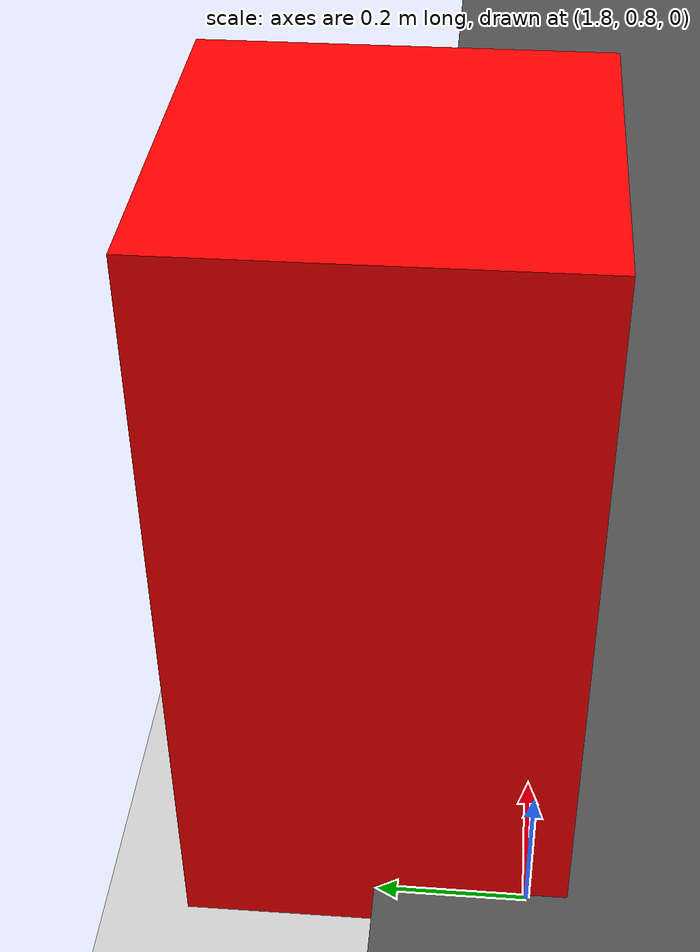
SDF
<?xml version="1.0" ?>
<sdf version="1.10">
  <world name="test_arena">
    <physics name="1ms" type="ignored">
      <max_step_size>0.001</max_step_size>
      <real_time_factor>1.0</real_time_factor>
    </physics>
    <plugin filename="gz-sim-physics-system" name="gz::sim::systems::Physics"></plugin>
    <plugin filename="gz-sim-sensors-system" name="gz::sim::systems::Sensors">
      <render_engine>ogre2</render_engine>
    </plugin>
    <plugin filename="gz-sim-user-commands-system" name="gz::sim::systems::UserCommands"></plugin>
    <plugin filename="gz-sim-scene-broadcaster-system" name="gz::sim::systems::SceneBroadcaster"></plugin>

    <light type="directional" name="sun">
      <cast_shadows>true</cast_shadows>
      <pose>0 0 10 0 0 0</pose>
      <diffuse>0.8 0.8 0.8 1</diffuse>
      <specular>0.2 0.2 0.2 1</specular>
      <attenuation>
        <range>1000</range>
        <constant>0.9</constant>
        <linear>0.01</linear>
        <quadratic>0.001</quadratic>
      </attenuation>
      <direction>-0.5 0.1 -0.9</direction>
    </light>

    <model name="ground_plane">
      <static>true</static>
      <link name="link">
        <collision name="collision">
          <geometry>
            <plane>
              <normal>0 0 1</normal>
            </plane>
          </geometry>
        </collision>
        <visual name="visual">
          <geometry>
            <plane>
              <normal>0 0 1</normal>
              <size>100 100</size>
            </plane>
          </geometry>
          <material>
            <ambient>0.8 0.8 0.8 1</ambient>
            <diffuse>0.8 0.8 0.8 1</diffuse>
          </material>
        </visual>
      </link>
    </model>

    <!-- Rampa 5 gradi -->
    <model name="ramp">
      <static>true</static>
      <pose>3 0 0.13 0 -0.0872665 0</pose> <!-- 5 gradi in radianti -->
      <link name="link">
        <collision name="collision">
          <geometry>
            <box><size>3 2 0.1</size></box>
          </geometry>
        </collision>
        <visual name="visual">
          <geometry>
            <box><size>3 2 0.1</size></box>
          </geometry>
          <material>
            <ambient>0.3 0.3 0.3 1</ambient>
            <diffuse>0.3 0.3 0.3 1</diffuse>
          </material>
        </visual>
      </link>
    </model>

    <!-- Ostacolo statico -->
    <model name="obstacle">
      <static>true</static>
      <pose>2 1 0.5 0 0 0</pose>
      <link name="link">
        <collision name="collision">
          <geometry>
            <box><size>0.5 0.5 1</size></box>
          </geometry>
        </collision>
        <visual name="visual">
          <geometry>
            <box><size>0.5 0.5 1</size></box>
          </geometry>
          <material>
            <ambient>1 0 0 1</ambient>
            <diffuse>1 0 0 1</diffuse>
          </material>
        </visual>
      </link>
    </model>
  </world>
</sdf>
